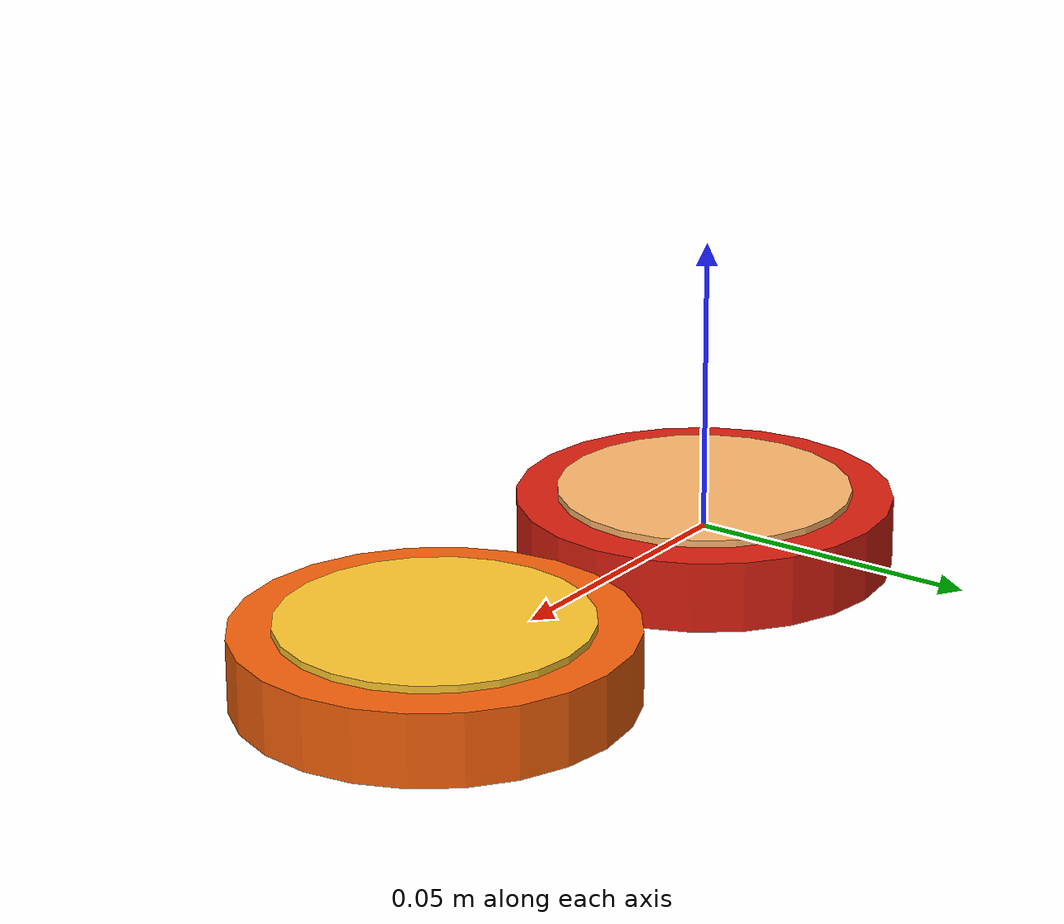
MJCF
<mujoco model="fruit_slices">
  <worldbody>
    <!-- Two small, camera-friendly fruit slices. Dimensions are in metres. -->
    <body name="apple_slice" pos="0 0 0">
      <geom name="apple_slice" type="cylinder" size="0.032 0.006" rgba="0.86 0.12 0.06 1"/>
      <geom name="apple_flesh" type="cylinder" pos="0 0 0.0062" size="0.025 0.001" rgba="1 0.72 0.42 1" contype="0" conaffinity="0"/>
    </body>
    <body name="orange_slice" pos="0.075 0 0.002">
      <geom name="orange_slice" type="cylinder" size="0.032 0.006" rgba="0.96 0.38 0.04 1"/>
      <geom name="orange_flesh" type="cylinder" pos="0 0 0.0062" size="0.025 0.001" rgba="1 0.78 0.18 1" contype="0" conaffinity="0"/>
    </body>
  </worldbody>
</mujoco>
